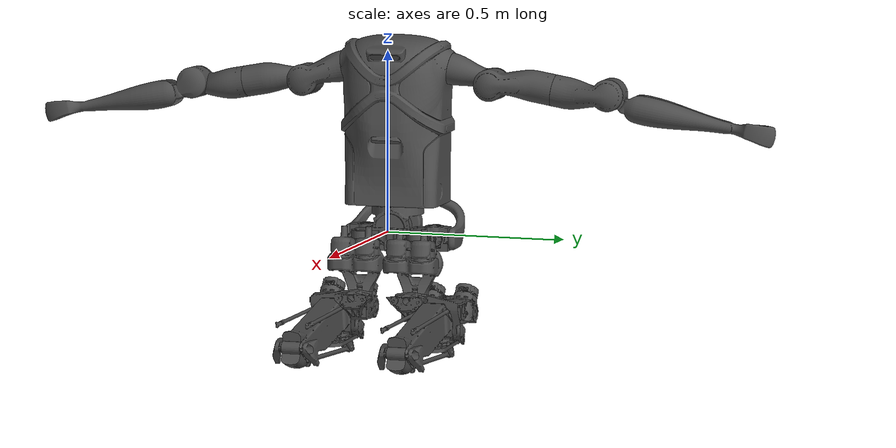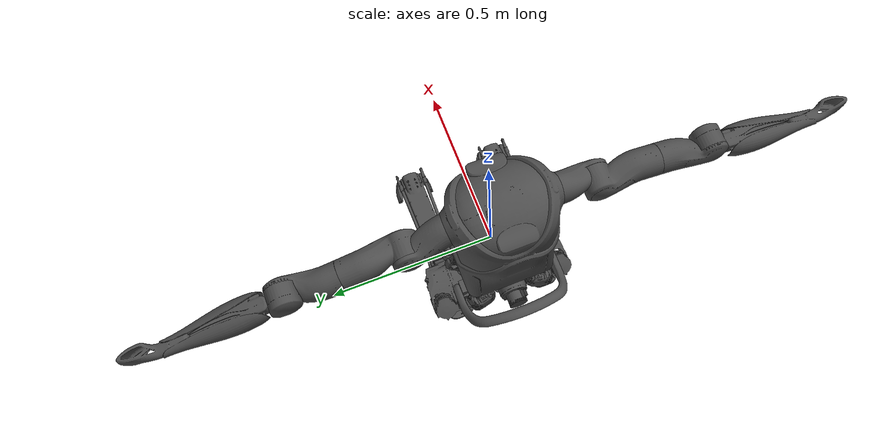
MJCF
<mujoco model="kangaroo">
  <compiler angle="radian" meshdir="assets/" texturedir="assets/"/>

  <asset>
    <mesh name="base_link_with_pelvis" content_type="model/obj" file="full/base_link_with_pelvis.obj"/>
    <mesh name="handle" content_type="model/obj" file="full/handle.obj"/>
    <mesh name="pelvis_base_link" content_type="model/obj" file="full/pelvis_base_link.obj"/>
    <mesh name="pelvis_1_link" content_type="model/obj" file="full/pelvis_1_link.obj"/>
    <mesh name="pelvis_2_link" content_type="model/obj" file="full/pelvis_2_link.obj"/>
    <mesh name="torso_link" content_type="model/obj" file="full/torso_link.obj"/>
    <mesh name="leg_left_1_link" content_type="model/obj" file="full/leg_left_1_link.obj"/>
    <mesh name="leg_left_2_link" content_type="model/obj" file="full/leg_left_2_link.obj"/>
    <mesh name="leg_left_3_link" content_type="model/obj" file="full/leg_left_3_link.obj"/>
    <mesh name="leg_4_collision_link" content_type="model/obj" file="full/leg_4_collision_link.obj"/>
    <mesh name="leg_tibia_link" content_type="model/obj" file="full/leg_tibia_link.obj"/>
    <mesh name="leg_6_link" content_type="model/obj" file="full/leg_6_link.obj"/>
    <mesh name="leg_7_link" content_type="model/obj" file="decomposed/leg_7_link/leg_7_link.obj"/>
    <mesh name="leg_right_1_link" content_type="model/obj" file="full/leg_right_1_link.obj"/>
    <mesh name="leg_right_2_link" content_type="model/obj" file="full/leg_right_2_link.obj"/>
    <mesh name="leg_right_3_link" content_type="model/obj" file="full/leg_right_3_link.obj"/>
    <mesh name="arm_base_link" content_type="model/obj" file="full/arm_base_link.obj"/>
    <mesh name="arm1_link" content_type="model/obj" file="full/arm1_link.obj"/>
    <mesh name="arm2_link" content_type="model/obj" file="full/arm2_link.obj"/>
    <mesh name="arm3_link" content_type="model/obj" file="full/arm3_link.obj"/>
    <mesh name="fake_forearm_left_link" content_type="model/obj" file="full/fake_forearm_left_link.obj"/>
    <mesh name="fake_forearm_right_link" content_type="model/obj" file="full/fake_forearm_right_link.obj"/>
  </asset>

  <worldbody>
    <body name="base_link">
      <inertial pos="-0.098278 0.0050886 -0.0322547" quat="0.522568 0.510641 -0.490042 0.475423" mass="2.6738" diaginertia="0.0278602 0.0228122 0.00833063"/>
      <geom type="mesh" contype="0" conaffinity="0" group="1" density="0" rgba="0.298039 0.298039 0.298039 1" mesh="base_link_with_pelvis"/>
      <body name="back_handle">
        <inertial pos="-0.1742 2.256e-05 -0.0026718" quat="0.350797 0.350792 -0.613958 0.613957" mass="0.32489" diaginertia="0.00645011 0.00511549 0.0015135"/>
        <geom type="mesh" contype="0" conaffinity="0" group="1" density="0" rgba="0.298039 0.298039 0.298039 1" mesh="handle"/>
      </body>
      <body name="pelvis_base_link" pos="-0.0918 0 -0.0455">
        <inertial pos="-0.020292 -0.000245 0.050005" quat="0.550147 0.448127 0.53674 0.456543" mass="1.82385" diaginertia="0.00796035 0.00789077 0.00167288"/>
        <geom type="mesh" contype="0" conaffinity="0" group="1" density="0" rgba="0.298039 0.298039 0.298039 1" mesh="pelvis_base_link"/>
        <body name="pelvis_1_link" pos="0 0 0.052" quat="0.707105 0 0.707108 0">
          <inertial pos="-0.02593 -1e-06 0.001466" quat="0.99984 0 -0.0179004 0" mass="1.24856" diaginertia="0.00539676 0.004808 0.00324424"/>
          <joint name="pelvis_1_joint" pos="0 0 0" axis="0 0 -1" range="-0.349066 0.349066" actuatorfrcrange="-100 100"/>
          <geom type="mesh" contype="0" conaffinity="0" group="1" density="0" rgba="0.298039 0.298039 0.298039 1" mesh="pelvis_1_link"/>
          <body name="pelvis_2_link" pos="-0.0591 0 0" quat="0.707105 0 -0.707108 0">
            <inertial pos="0 0 -0.011136" quat="-0.0905443 0.701286 0.0905443 0.701286" mass="0.435922" diaginertia="0.001275 0.000674889 0.000630111"/>
            <joint name="pelvis_2_joint" pos="0 0 0" axis="0 0 -1" range="-1.309 1.309" actuatorfrcrange="-100 100"/>
            <geom type="mesh" contype="0" conaffinity="0" group="1" density="0" rgba="0.298039 0.298039 0.298039 1" mesh="pelvis_2_link"/>
            <body name="torso_link" pos="0 0 0.0061">
              <inertial pos="-0.01 -0.00074 0.22222" quat="0.999849 0.0118442 0.0046843 -0.0118114" mass="13.3364" diaginertia="0.287967 0.266546 0.112048"/>
              <geom type="mesh" contype="0" conaffinity="0" group="1" density="0" rgba="0.298039 0.298039 0.298039 1" mesh="torso_link"/>
              <body name="imu_link" pos="0.071 -0.0014 0.02" quat="0 0.707107 -0.707107 0">
                <geom size="0.005 0.005 0.005" type="box" contype="0" conaffinity="0" group="1" density="0"/>
              </body>
              <body name="arm_left_base_link" pos="0 0.105954 0.384396" quat="0.642802 -0.766033 1.86923e-06 1.63502e-07">
                <inertial pos="0 0 0" mass="9.05e-07" diaginertia="0 0 0"/>
                <geom type="mesh" contype="0" conaffinity="0" group="1" density="0" rgba="0.298039 0.298039 0.298039 1" mesh="arm_base_link"/>
                <body name="arm_left_1_link" quat="1.34924e-11 -3.67321e-06 1 -3.67321e-06">
                  <inertial pos="0.0070639 0.0030301 -0.05724" quat="0.991252 0.0809813 -0.0910271 0.0507521" mass="1.1788" diaginertia="0.00192068 0.00177268 0.000875278"/>
                  <joint name="arm_left_1_joint" pos="0 0 0" axis="0 0 -1" range="-2.61799 2.61799" actuatorfrcrange="-43 43"/>
                  <geom type="mesh" contype="0" conaffinity="0" group="1" density="0" rgba="0.298039 0.298039 0.298039 1" mesh="arm1_link"/>
                  <body name="arm_left_2_link" pos="0.03711 0.02 -0.17011" quat="0.707105 0 0.707108 0">
                    <inertial pos="0.029543 -0.0049762 -0.03224" quat="0.0848392 0.690549 -0.0139433 0.718157" mass="1.2955" diaginertia="0.00278545 0.00260446 0.00100708"/>
                    <joint name="arm_left_2_joint" pos="0 0 0" axis="0 0 1" range="-1.13446 2.44346" actuatorfrcrange="-43 43"/>
                    <geom type="mesh" contype="0" conaffinity="0" group="1" density="0" rgba="0.298039 0.298039 0.298039 1" mesh="arm2_link"/>
                    <body name="arm_left_3_link" pos="0.15989 -0.02 -0.03711" quat="0.707105 0 -0.707108 0">
                      <inertial pos="-0.00706385 -0.00303013 -0.0572396" quat="0.991251 -0.0809737 0.0910312 0.0507756" mass="1.17879" diaginertia="0.00192065 0.00177272 0.000875276"/>
                      <joint name="arm_left_3_joint" pos="0 0 0" axis="0 0 -1" range="-2.61799 2.61799" actuatorfrcrange="-43 43"/>
                      <geom type="mesh" contype="0" conaffinity="0" group="1" density="0" rgba="0.298039 0.298039 0.298039 1" mesh="arm3_link"/>
                      <body name="arm_left_4_link" pos="-0.03711 -0.02 -0.17011" quat="9.38184e-07 0.707105 9.38187e-07 -0.707108">
                        <inertial pos="0.0752641 -0.0079317 -0.023427" quat="0.573967 0.373833 0.602191 0.410095" mass="1.43535" diaginertia="0.0210305 0.0210101 0.00117153"/>
                        <joint name="arm_left_4_joint" pos="0 0 0" axis="0 0 1" range="-1.1345 2.4435" actuatorfrcrange="-43 43"/>
                        <geom type="mesh" contype="0" conaffinity="0" group="1" density="0" rgba="0.298039 0.298039 0.298039 1" mesh="fake_forearm_left_link"/>
                        <body name="arm_left_tool_link" pos="0.35 -0.02 -0.0255"/>
                      </body>
                    </body>
                  </body>
                </body>
              </body>
              <body name="arm_right_base_link" pos="0 -0.105954 0.384396" quat="1.01637e-06 8.52866e-07 0.766033 -0.642802">
                <inertial pos="0 0 0" mass="9.05e-07" diaginertia="0 0 0"/>
                <geom type="mesh" contype="0" conaffinity="0" group="1" density="0" rgba="0.298039 0.298039 0.298039 1" mesh="arm_base_link"/>
                <body name="arm_right_1_link" quat="1.34924e-11 -3.67321e-06 1 -3.67321e-06">
                  <inertial pos="0.0070639 0.0030301 -0.05724" quat="0.991252 0.0809813 -0.0910271 0.0507521" mass="1.1788" diaginertia="0.00192068 0.00177268 0.000875278"/>
                  <joint name="arm_right_1_joint" pos="0 0 0" axis="0 0 -1" range="-2.61799 2.61799" actuatorfrcrange="-43 43"/>
                  <geom type="mesh" contype="0" conaffinity="0" group="1" density="0" rgba="0.298039 0.298039 0.298039 1" mesh="arm1_link"/>
                  <body name="arm_right_2_link" pos="0.03711 0.02 -0.17011" quat="0.707105 0 0.707108 0">
                    <inertial pos="0.029543 -0.0049762 -0.03224" quat="0.0848392 0.690549 -0.0139433 0.718157" mass="1.2955" diaginertia="0.00278545 0.00260446 0.00100708"/>
                    <joint name="arm_right_2_joint" pos="0 0 0" axis="0 0 1" range="-1.13446 2.44346" actuatorfrcrange="-43 43"/>
                    <geom type="mesh" contype="0" conaffinity="0" group="1" density="0" rgba="0.298039 0.298039 0.298039 1" mesh="arm2_link"/>
                    <body name="arm_right_3_link" pos="0.15989 -0.02 -0.03711" quat="0.707105 0 -0.707108 0">
                      <inertial pos="-0.00706385 -0.00303013 -0.0572396" quat="0.991251 -0.0809737 0.0910312 0.0507756" mass="1.17879" diaginertia="0.00192065 0.00177272 0.000875276"/>
                      <joint name="arm_right_3_joint" pos="0 0 0" axis="0 0 -1" range="-2.61799 2.61799" actuatorfrcrange="-43 43"/>
                      <geom type="mesh" contype="0" conaffinity="0" group="1" density="0" rgba="0.298039 0.298039 0.298039 1" mesh="arm3_link"/>
                      <body name="arm_right_4_link" pos="-0.03711 -0.02 -0.17011" quat="9.38184e-07 0.707105 9.38187e-07 -0.707108">
                        <inertial pos="0.0752641 -0.0079317 -0.023427" quat="0.573967 0.373833 0.602191 0.410095" mass="1.43535" diaginertia="0.0210305 0.0210101 0.00117153"/>
                        <joint name="arm_right_4_joint" pos="0 0 0" axis="0 0 1" range="-1.1345 2.4435" actuatorfrcrange="-43 43"/>
                        <geom type="mesh" contype="0" conaffinity="0" group="1" density="0" rgba="0.298039 0.298039 0.298039 1" mesh="fake_forearm_right_link"/>
                        <body name="arm_right_tool_link" pos="0.35 -0.02 -0.0255"/>
                      </body>
                    </body>
                  </body>
                </body>
              </body>
            </body>
          </body>
        </body>
      </body>
      <body name="leg_left_1_link" pos="-0.0150026 0.08 -0.0585">
        <inertial pos="0.0063167 0.0045949 -0.0083828" quat="0.99829 -0.0115969 -0.0468646 0.0329665" mass="2.7478" diaginertia="0.00193869 0.00182214 0.00142127"/>
        <joint name="leg_left_1_joint" pos="0 0 0" axis="0 0 1" range="-0.261799 0.698132" actuatorfrcrange="-80 80"/>
        <geom type="mesh" contype="0" conaffinity="0" group="1" density="0" rgba="0.298039 0.298039 0.298039 1" mesh="leg_left_1_link"/>
        <body name="leg_left_2_link" pos="0.015024 0 -0.1175">
          <inertial pos="-0.0029278 -9.6207e-05 1.0866e-09" quat="0.500354 0.500354 0.499645 0.499645" mass="0.0905312" diaginertia="3.88542e-05 3.62287e-05 6.1016e-06"/>
          <joint name="leg_left_2_joint" pos="0 0 0" axis="0 1 0" range="-0.741765 0.663225" actuatorfrcrange="-230 230"/>
          <geom type="mesh" contype="0" conaffinity="0" group="1" density="0" rgba="0.298039 0.298039 0.298039 1" mesh="leg_left_2_link"/>
          <body name="leg_left_3_link">
            <inertial pos="-0.033949 0.049989 -0.030543" quat="0.0645597 0.615939 -0.131914 0.773983" mass="3.658" diaginertia="0.00327114 0.00320831 0.00250706"/>
            <joint name="leg_left_3_joint" pos="0 0 0" axis="1 0 0" range="-0.471239 0.471239" actuatorfrcrange="-139 139"/>
            <geom type="mesh" contype="0" conaffinity="0" group="1" density="0" rgba="0.298039 0.298039 0.298039 1" mesh="leg_left_3_link"/>
            <body name="leg_left_length_link" pos="0 0.0669 -0.09" quat="0 0 1 0">
              <inertial pos="0 0 0" mass="0.1" diaginertia="8.58333e-05 8.58333e-05 5e-06"/>
              <joint name="leg_left_length_joint" pos="0 0 0" axis="0 0 1" type="slide" range="0.131973 0.714166" actuatorfrcrange="-1100 1100"/>
              <body name="leg_left_4_link" quat="-0.173648 0 0.984808 0">
                <inertial pos="-0.00759995 -6.94998e-09 5.88281e-08" quat="3.61787e-06 0.707107 3.61787e-06 0.707106" mass="0.0905838" diaginertia="2.98863e-05 2.92763e-05 4.05264e-06"/>
                <joint name="leg_left_4_joint" pos="0 0 0" axis="0 1 0" range="-0.741765 0.663225" actuatorfrcrange="-140 140"/>
                <geom quat="0.984808 0 -0.173648 0" type="mesh" contype="0" conaffinity="0" group="1" density="0" rgba="0.298039 0.298039 0.298039 1" mesh="leg_6_link"/>
                <body name="leg_left_5_link">
                  <inertial pos="0.00560127 -5.98529e-06 -0.0297244" quat="-8.95501e-06 0.58162 -1.58775e-05 0.813461" mass="0.61563" diaginertia="0.0019868 0.00170803 0.000338695"/>
                  <joint name="leg_left_5_joint" pos="0 0 0" axis="-1 0 0" range="-0.471239 0.471239" actuatorfrcrange="-82 82"/>
                  <geom type="mesh" contype="0" conaffinity="0" group="1" density="0" rgba="0.298039 0.298039 0.298039 1" mesh="leg_7_link"/>
                  <body name="leg_left_5_aligned_link" quat="0.984808 0 -0.173648 0">
                    <body name="left_sole_link" pos="0 0 -0.0425">
                      <body name="left_foot_upper_left" pos="0.115 0.045 0"/>
                      <body name="left_foot_upper_right" pos="0.115 -0.045 0"/>
                      <body name="left_foot_lower_left" pos="-0.095 0.045 0"/>
                      <body name="left_foot_lower_right" pos="-0.095 -0.045 0"/>
                    </body>
                  </body>
                </body>
              </body>
            </body>
            <body name="leg_left_femur_link" pos="0 0.0669 -0.09" quat="0.819152 0 -0.573576 0">
              <inertial pos="0.0527475 0.000135688 -0.146959" quat="0.720223 -0.0942418 -0.0980078 0.680288" mass="3.94567" diaginertia="0.0121138 0.0118241 0.00184947"/>
              <joint name="leg_left_femur_joint" pos="0 0 0" axis="0 1 0" range="0.174533 1.22173" actuatorfrcrange="-100 100"/>
              <geom pos="0 0 0" quat="0.866025 0 0.5 0" type="mesh" contype="0" conaffinity="0" group="1" density="0" rgba="0.298039 0.298039 0.298039 1" mesh="leg_4_collision_link"/>
              <body name="leg_left_knee_link" pos="0.129945 0 -0.357092" quat="0.34202 0 0.939693 0">
                <inertial pos="-0.0569665 -5.4131e-05 -0.148821" quat="0.698616 0.0970713 0.0960701 0.702341" mass="1.02238" diaginertia="0.00215347 0.00207236 0.000258578"/>
                <joint name="leg_left_knee_joint" pos="0 0 0" axis="0 -1 0" range="0.349066 2.44346" actuatorfrcrange="-100 100"/>
                <geom type="mesh" contype="0" conaffinity="0" group="1" density="0" rgba="0.298039 0.298039 0.298039 1" mesh="leg_tibia_link"/>
                <body name="leg_left_knee_straight" quat="0.819152 0 -0.573576 0">
                  <body name="leg_left_knee_lower_bearing" pos="-0.38 0 0"/>
                </body>
              </body>
            </body>
          </body>
        </body>
      </body>
      <body name="leg_right_1_link" pos="-0.0150026 -0.08 -0.0585">
        <inertial pos="0.0063167 -0.0045949 -0.0083828" quat="0.998081 0.0061833 0.0472134 -0.0395937" mass="2.7478" diaginertia="0.00193889 0.00182188 0.00142133"/>
        <joint name="leg_right_1_joint" pos="0 0 0" axis="0 0 1" range="-0.698132 0.261799" actuatorfrcrange="-80 80"/>
        <geom type="mesh" contype="0" conaffinity="0" group="1" density="0" rgba="0.298039 0.298039 0.298039 1" mesh="leg_right_1_link"/>
        <body name="leg_right_2_link" pos="0.015024 0 -0.1175">
          <inertial pos="-0.0029278 -9.6207e-05 1.0866e-09" quat="0.500354 0.500354 0.499645 0.499645" mass="0.0905312" diaginertia="3.88542e-05 3.62287e-05 6.1016e-06"/>
          <joint name="leg_right_2_joint" pos="0 0 0" axis="0 1 0" range="-0.741765 0.663225" actuatorfrcrange="-230 230"/>
          <geom type="mesh" contype="0" conaffinity="0" group="1" density="0" rgba="0.298039 0.298039 0.298039 1" mesh="leg_right_2_link"/>
          <body name="leg_right_3_link">
            <inertial pos="-0.033949 -0.049989 -0.030543" quat="-0.276874 0.75747 -0.131896 0.576353" mass="3.658" diaginertia="0.00331808 0.0031534 0.00251503"/>
            <joint name="leg_right_3_joint" pos="0 0 0" axis="1 0 0" range="-0.471239 0.471239" actuatorfrcrange="-139 139"/>
            <geom type="mesh" contype="0" conaffinity="0" group="1" density="0" rgba="0.298039 0.298039 0.298039 1" mesh="leg_right_3_link"/>
            <body name="leg_right_length_link" pos="0 -0.0669 -0.09" quat="0 0 1 0">
              <inertial pos="0 0 0" mass="0.1" diaginertia="8.58333e-05 8.58333e-05 5e-06"/>
              <joint name="leg_right_length_joint" pos="0 0 0" axis="0 0 1" type="slide" range="0.131973 0.714166" actuatorfrcrange="-1100 1100"/>
              <body name="leg_right_4_link" quat="-0.173648 0 0.984808 0">
                <inertial pos="-0.00759995 -6.94998e-09 5.88281e-08" quat="3.61787e-06 0.707107 3.61787e-06 0.707106" mass="0.0905838" diaginertia="2.98863e-05 2.92763e-05 4.05264e-06"/>
                <joint name="leg_right_4_joint" pos="0 0 0" axis="0 1 0" range="-0.741765 0.663225" actuatorfrcrange="-140 140"/>
                <geom quat="0.984808 0 -0.173648 0" type="mesh" contype="0" conaffinity="0" group="1" density="0" rgba="0.298039 0.298039 0.298039 1" mesh="leg_6_link"/>
                <body name="leg_right_5_link">
                  <inertial pos="0.00560127 -5.98529e-06 -0.0297244" quat="-8.95501e-06 0.58162 -1.58775e-05 0.813461" mass="0.61563" diaginertia="0.0019868 0.00170803 0.000338695"/>
                  <joint name="leg_right_5_joint" pos="0 0 0" axis="-1 0 0" range="-0.471239 0.471239" actuatorfrcrange="-82 82"/>
                  <geom type="mesh" contype="0" conaffinity="0" group="1" density="0" rgba="0.298039 0.298039 0.298039 1" mesh="leg_7_link"/>
                  <body name="leg_right_5_aligned_link" quat="0.984808 0 -0.173648 0">
                    <body name="right_sole_link" pos="0 0 -0.0425">
                      <body name="right_foot_upper_left" pos="0.115 0.045 0"/>
                      <body name="right_foot_upper_right" pos="0.115 -0.045 0"/>
                      <body name="right_foot_lower_left" pos="-0.095 0.045 0"/>
                      <body name="right_foot_lower_right" pos="-0.095 -0.045 0"/>
                    </body>
                  </body>
                </body>
              </body>
            </body>
            <body name="leg_right_femur_link" pos="0 -0.0669 -0.09" quat="0.819152 0 -0.573576 0">
              <inertial pos="0.0527475 0.000135688 -0.146959" quat="0.720223 -0.0942418 -0.0980078 0.680288" mass="3.94567" diaginertia="0.0121138 0.0118241 0.00184947"/>
              <joint name="leg_right_femur_joint" pos="0 0 0" axis="0 1 0" range="0.174533 1.22173" actuatorfrcrange="-100 100"/>
              <geom pos="0 0 0" quat="0.866025 0 0.5 0" type="mesh" contype="0" conaffinity="0" group="1" density="0" rgba="0.298039 0.298039 0.298039 1" mesh="leg_4_collision_link"/>
              <body name="leg_right_knee_link" pos="0.129945 0 -0.357092" quat="0.34202 0 0.939693 0">
                <inertial pos="-0.0569665 -5.4131e-05 -0.148821" quat="0.698616 0.0970713 0.0960701 0.702341" mass="1.02238" diaginertia="0.00215347 0.00207236 0.000258578"/>
                <joint name="leg_right_knee_joint" pos="0 0 0" axis="0 -1 0" range="0.349066 2.44346" actuatorfrcrange="-100 100"/>
                <geom type="mesh" contype="0" conaffinity="0" group="1" density="0" rgba="0.298039 0.298039 0.298039 1" mesh="leg_tibia_link"/>
                <body name="leg_right_knee_straight" quat="0.819152 0 -0.573576 0">
                  <body name="leg_right_knee_lower_bearing" pos="-0.38 0 0"/>
                </body>
              </body>
            </body>
          </body>
        </body>
      </body>
    </body>
  </worldbody>
</mujoco>
